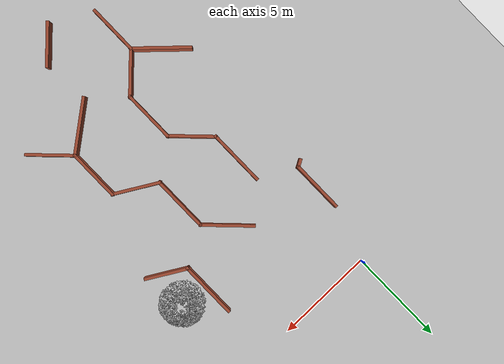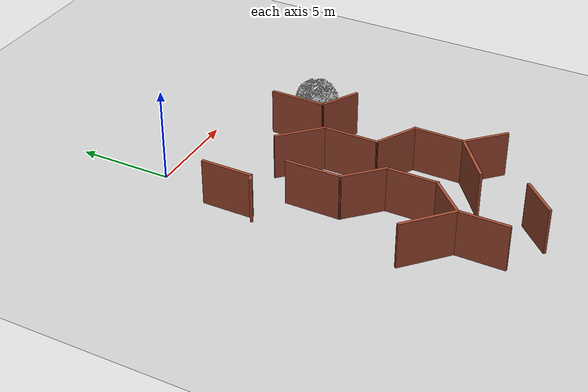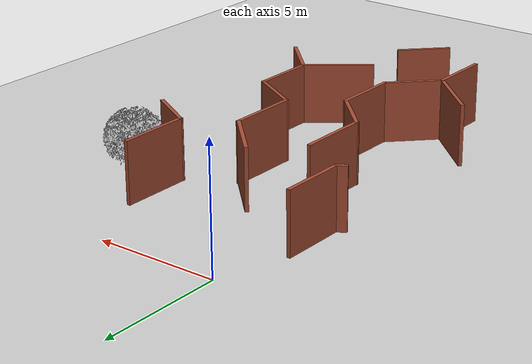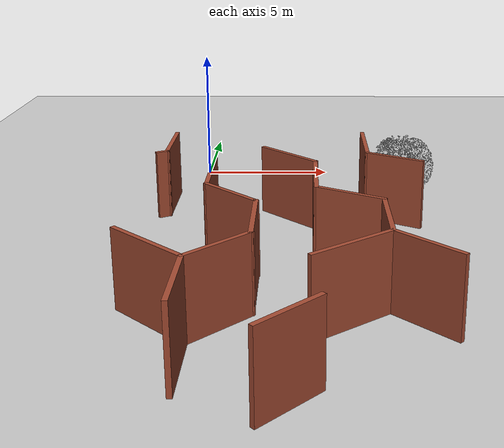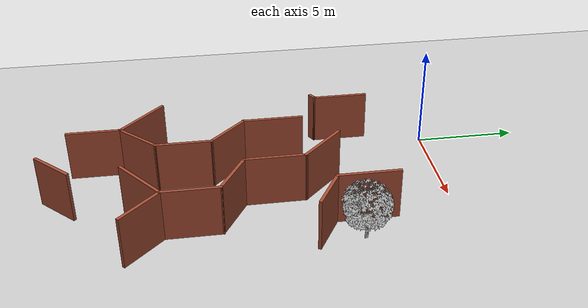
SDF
<sdf version="1.6">
 <world name="default">
  <model name="maze_rect_3">
   <pose>4e-06 -9.9e-05 0 0 -0 1.57001</pose>
   <link name="Wall_446">
    <collision name="Wall_446_Collision">
     <geometry><box><size>2.25 0.15 2.5</size></box></geometry>
     <pose>0 0 1.25 0 -0 0</pose>
    </collision>
    <visual name="Wall_446_Visual">
     <pose>0 0 1.25 0 -0 0</pose>
     <geometry><box><size>2.25 0.15 2.5</size></box></geometry>
     <material>
      <script><uri>file://media/materials/scripts/gazebo.material</uri><name>Gazebo/Bricks</name></script>
      <ambient>1 1 1 1</ambient>
     </material>
     <meta><layer>0</layer></meta>
    </visual>
    <pose>-6.18427 -7.24153 0 0 -0 1.0472</pose>
   </link>
   <link name="Wall_447">
    <collision name="Wall_447_Collision">
     <geometry><box><size>3 0.15 2.5</size></box></geometry>
     <pose>0 0 1.25 0 -0 0</pose>
    </collision>
    <visual name="Wall_447_Visual">
     <pose>0 0 1.25 0 -0 0</pose>
     <geometry><box><size>3 0.15 2.5</size></box></geometry>
     <material>
      <script><uri>file://media/materials/scripts/gazebo.material</uri><name>Gazebo/Bricks</name></script>
      <ambient>1 1 1 1</ambient>
     </material>
     <meta><layer>0</layer></meta>
    </visual>
    <pose>-4.23427 -6.33221 0 0 -0 0</pose>
   </link>
   <link name="Wall_468">
    <collision name="Wall_468_Collision">
     <geometry><box><size>2.5 0.15 2.5</size></box></geometry>
     <pose>0 0 1.25 0 -0 0</pose>
    </collision>
    <visual name="Wall_468_Visual">
     <pose>0 0 1.25 0 -0 0</pose>
     <geometry><box><size>2.5 0.15 2.5</size></box></geometry>
     <material>
      <script><uri>file://media/materials/scripts/gazebo.material</uri><name>Gazebo/Bricks</name></script>
      <ambient>1 1 1 1</ambient>
     </material>
     <meta><layer>0</layer></meta>
    </visual>
    <pose>-14.2074 -7.29221 0 0 -0 0.785398</pose>
   </link>
   <link name="Wall_469">
    <collision name="Wall_469_Collision">
     <geometry><box><size>2.75 0.15 2.5</size></box></geometry>
     <pose>0 0 1.25 0 -0 0</pose>
    </collision>
    <visual name="Wall_469_Visual">
     <pose>0 0 1.25 0 -0 0</pose>
     <geometry><box><size>2.75 0.15 2.5</size></box></geometry>
     <material>
      <script><uri>file://media/materials/scripts/gazebo.material</uri><name>Gazebo/Bricks</name></script>
      <ambient>1 1 1 1</ambient>
     </material>
     <meta><layer>0</layer></meta>
    </visual>
    <pose>-12.0765 -6.46136 0 0 -0 0</pose>
   </link>
   <link name="Wall_470">
    <collision name="Wall_470_Collision">
     <geometry><box><size>2.5 0.15 2.5</size></box></geometry>
     <pose>0 0 1.25 0 -0 0</pose>
    </collision>
    <visual name="Wall_470_Visual">
     <pose>0 0 1.25 0 -0 0</pose>
     <geometry><box><size>2.5 0.15 2.5</size></box></geometry>
     <material>
      <script><uri>file://media/materials/scripts/gazebo.material</uri><name>Gazebo/Bricks</name></script>
      <ambient>1 1 1 1</ambient>
     </material>
     <meta><layer>0</layer></meta>
    </visual>
    <pose>-10.189 -5.44379 0 0 -0 1.0472</pose>
   </link>
   <link name="Wall_471">
    <collision name="Wall_471_Collision">
     <geometry><box><size>3 0.15 2.5</size></box></geometry>
     <pose>0 0 1.25 0 -0 0</pose>
    </collision>
    <visual name="Wall_471_Visual">
     <pose>0 0 1.25 0 -0 0</pose>
     <geometry><box><size>3 0.15 2.5</size></box></geometry>
     <material>
      <script><uri>file://media/materials/scripts/gazebo.material</uri><name>Gazebo/Bricks</name></script>
      <ambient>1 1 1 1</ambient>
     </material>
     <meta><layer>0</layer></meta>
    </visual>
    <pose>-8.17652 -4.42621 0 0 -0 0</pose>
   </link>
   <link name="Wall_472">
    <collision name="Wall_472_Collision">
     <geometry><box><size>2.75 0.15 2.5</size></box></geometry>
     <pose>0 0 1.25 0 -0 0</pose>
    </collision>
    <visual name="Wall_472_Visual">
     <pose>0 0 1.25 0 -0 0</pose>
     <geometry><box><size>2.75 0.15 2.5</size></box></geometry>
     <material>
      <script><uri>file://media/materials/scripts/gazebo.material</uri><name>Gazebo/Bricks</name></script>
      <ambient>1 1 1 1</ambient>
     </material>
     <meta><layer>0</layer></meta>
    </visual>
    <pose>-5.83228 -3.50697 0 0 -0 0.785398</pose>
   </link>
   <link name="Wall_476">
    <collision name="Wall_476_Collision">
     <geometry><box><size>2.75 0.15 2.5</size></box></geometry>
     <pose>0 0 1.25 0 -0 0</pose>
    </collision>
    <visual name="Wall_476_Visual">
     <pose>0 0 1.25 0 -0 0</pose>
     <geometry><box><size>2.75 0.15 2.5</size></box></geometry>
     <material>
      <script><uri>file://media/materials/scripts/gazebo.material</uri><name>Gazebo/Bricks</name></script>
      <ambient>1 1 1 1</ambient>
     </material>
     <meta><layer>0</layer></meta>
    </visual>
    <pose>-4.17297 0.932357 0 0 -0 3.14159</pose>
   </link>
   <link name="Wall_482">
    <collision name="Wall_482_Collision">
     <geometry><box><size>2.97979 0.15 2.5</size></box></geometry>
     <pose>0 0 1.25 0 -0 0</pose>
    </collision>
    <visual name="Wall_482_Visual">
     <pose>0 0 1.25 0 -0 0</pose>
     <geometry><box><size>2.97979 0.15 2.5</size></box></geometry>
     <material>
      <script><uri>file://media/materials/scripts/gazebo.material</uri><name>Gazebo/Bricks</name></script>
      <ambient>1 1 1 1</ambient>
     </material>
     <meta><layer>0</layer></meta>
    </visual>
    <pose>-14.2385 -5.33934 0 0 -0 -0.915727</pose>
   </link>
   <link name="Wall_485">
    <collision name="Wall_485_Collision">
     <geometry><box><size>2.25 0.15 2.5</size></box></geometry>
     <pose>0 0 1.25 0 -0 0</pose>
    </collision>
    <visual name="Wall_485_Visual">
     <pose>0 0 1.25 0 -0 0</pose>
     <geometry><box><size>2.25 0.15 2.5</size></box></geometry>
     <material>
      <script><uri>file://media/materials/scripts/gazebo.material</uri><name>Gazebo/Bricks</name></script>
      <ambient>1 1 1 1</ambient>
     </material>
     <meta><layer>0</layer></meta>
    </visual>
    <pose>-18.1705 -3.68646 0 0 -0 2.35619</pose>
   </link>
   <link name="Wall_496">
    <collision name="Wall_496_Collision">
     <geometry><box><size>0.5 0.15 2.5</size></box></geometry>
     <pose>0 0 1.25 0 -0 0</pose>
    </collision>
    <visual name="Wall_496_Visual">
     <pose>0 0 1.25 0 -0 0</pose>
     <geometry><box><size>0.5 0.15 2.5</size></box></geometry>
     <material>
      <script><uri>file://media/materials/scripts/gazebo.material</uri><name>Gazebo/Bricks</name></script>
      <ambient>1 1 1 1</ambient>
     </material>
     <meta><layer>0</layer></meta>
    </visual>
    <pose>-5.56047 1.08391 0 0 -0 -1.0472</pose>
   </link>
   <link name="Wall_500">
    <collision name="Wall_500_Collision">
     <geometry><box><size>3 0.15 2.5</size></box></geometry>
     <pose>0 0 1.25 0 -0 0</pose>
    </collision>
    <visual name="Wall_500_Visual">
     <pose>0 0 1.25 0 -0 0</pose>
     <geometry><box><size>3 0.15 2.5</size></box></geometry>
     <material>
      <script><uri>file://media/materials/scripts/gazebo.material</uri><name>Gazebo/Bricks</name></script>
      <ambient>1 1 1 1</ambient>
     </material>
     <meta><layer>0</layer></meta>
    </visual>
    <pose>-7.87889 -0.91715 0 0 -0 3.14159</pose>
   </link>
   <link name="Wall_501">
    <collision name="Wall_501_Collision">
     <geometry><box><size>2.5 0.15 2.5</size></box></geometry>
     <pose>0 0 1.25 0 -0 0</pose>
    </collision>
    <visual name="Wall_501_Visual">
     <pose>0 0 1.25 0 -0 0</pose>
     <geometry><box><size>2.5 0.15 2.5</size></box></geometry>
     <material>
      <script><uri>file://media/materials/scripts/gazebo.material</uri><name>Gazebo/Bricks</name></script>
      <ambient>1 1 1 1</ambient>
     </material>
     <meta><layer>0</layer></meta>
    </visual>
    <pose>-10.1347 -1.748 0 0 -0 -2.35619</pose>
   </link>
   <link name="Wall_502">
    <collision name="Wall_502_Collision">
     <geometry><box><size>2.75 0.15 2.5</size></box></geometry>
     <pose>0 0 1.25 0 -0 0</pose>
    </collision>
    <visual name="Wall_502_Visual">
     <pose>0 0 1.25 0 -0 0</pose>
     <geometry><box><size>2.75 0.15 2.5</size></box></geometry>
     <material>
      <script><uri>file://media/materials/scripts/gazebo.material</uri><name>Gazebo/Bricks</name></script>
      <ambient>1 1 1 1</ambient>
     </material>
     <meta><layer>0</layer></meta>
    </visual>
    <pose>-12.2656 -2.57885 0 0 -0 3.14159</pose>
   </link>
   <link name="Wall_503">
    <collision name="Wall_503_Collision">
     <geometry><box><size>2.5 0.15 2.5</size></box></geometry>
     <pose>0 0 1.25 0 -0 0</pose>
    </collision>
    <visual name="Wall_503_Visual">
     <pose>0 0 1.25 0 -0 0</pose>
     <geometry><box><size>2.5 0.15 2.5</size></box></geometry>
     <material>
      <script><uri>file://media/materials/scripts/gazebo.material</uri><name>Gazebo/Bricks</name></script>
      <ambient>1 1 1 1</ambient>
     </material>
     <meta><layer>0</layer></meta>
    </visual>
    <pose>-14.3964 -1.748 0 0 -0 2.35619</pose>
   </link>
   <link name="Wall_504">
    <collision name="Wall_504_Collision">
     <geometry><box><size>2.66072 0.15 2.5</size></box></geometry>
     <pose>0 0 1.25 0 -0 0</pose>
    </collision>
    <visual name="Wall_504_Visual">
     <pose>0 0 1.25 0 -0 0</pose>
     <geometry><box><size>2.66072 0.15 2.5</size></box></geometry>
     <material>
      <script><uri>file://media/materials/scripts/gazebo.material</uri><name>Gazebo/Bricks</name></script>
      <ambient>1 1 1 1</ambient>
     </material>
     <meta><layer>0</layer></meta>
    </visual>
    <pose>-16.4826 -0.912996 0 0 -0 3.13828</pose>
   </link>
   <link name="Wall_506">
    <collision name="Wall_506_Collision">
     <geometry><box><size>3.04862 0.15 2.5</size></box></geometry>
     <pose>0 0 1.25 0 -0 0</pose>
    </collision>
    <visual name="Wall_506_Visual">
     <pose>0 0 1.25 0 -0 0</pose>
     <geometry><box><size>3.04862 0.15 2.5</size></box></geometry>
     <material>
      <script><uri>file://media/materials/scripts/gazebo.material</uri><name>Gazebo/Bricks</name></script>
      <ambient>1 1 1 1</ambient>
     </material>
     <meta><layer>0</layer></meta>
    </visual>
    <pose>-14.2391 0.142993 0 0 -0 -2.3211</pose>
   </link>
   <static>1</static>
  </model>
  <model name="tree2_21">
   <link name="link_0">
    <inertial>
     <mass>1</mass>
     <inertia>
      <ixx>0.166667</ixx>
      <ixy>0</ixy>
      <ixz>0</ixz>
      <iyy>0.166667</iyy>
      <iyz>0</iyz>
      <izz>0.166667</izz>
     </inertia>
    </inertial>
    <pose>-0 -0 0 1.58863 -0.000294 0</pose>
    <visual name="visual">
     <geometry><mesh><uri>model://tree2/Tree.obj</uri><scale>1 1 1</scale></mesh></geometry>
    </visual>
    <collision name="collision">
     <geometry><mesh><uri>model://tree2/Tree.obj</uri><scale>1 1 1</scale></mesh></geometry>
     <surface>
      <friction>
       <ode><mu>1</mu><mu2>1</mu2><fdir1>0 0 0</fdir1><slip1>0</slip1><slip2>0</slip2></ode>
       <torsional>
        <coefficient>1</coefficient>
        <patch_radius>0</patch_radius>
        <surface_radius>0</surface_radius>
        <use_patch_radius>1</use_patch_radius>
        <ode><slip>0</slip></ode>
       </torsional>
      </friction>
      <bounce><restitution_coefficient>0</restitution_coefficient><threshold>1e+06</threshold></bounce>
      <contact>
       <collide_without_contact>0</collide_without_contact>
       <collide_without_contact_bitmask>1</collide_without_contact_bitmask>
       <collide_bitmask>1</collide_bitmask>
       <ode>
        <soft_cfm>0</soft_cfm>
        <soft_erp>0.2</soft_erp>
        <kp>1e+13</kp>
        <kd>1</kd>
        <max_vel>0.01</max_vel>
        <min_depth>0</min_depth>
       </ode>
       <bullet>
        <split_impulse>1</split_impulse>
        <split_impulse_penetration_threshold>-0.01</split_impulse_penetration_threshold>
        <soft_cfm>0</soft_cfm>
        <soft_erp>0.2</soft_erp>
        <kp>1e+13</kp>
        <kd>1</kd>
       </bullet>
      </contact>
     </surface>
    </collision>
   </link>
   <static>1</static>
   <pose>7.71258 -4.5894 0 0 -0 0</pose>
  </model>
  <model name="ground_plane">
   <static>1</static>
   <link name="link">
    <collision name="collision">
     <geometry><plane><normal>0 0 1</normal><size>100 100</size></plane></geometry>
     <surface>
      <contact><collide_bitmask>65535</collide_bitmask></contact>
      <friction><ode><mu>100</mu><mu2>50</mu2></ode></friction>
     </surface>
    </collision>
    <visual name="visual">
     <cast_shadows>0</cast_shadows>
     <geometry><plane><normal>0 0 1</normal><size>100 100</size></plane></geometry>
     <material>
      <script><uri>file://media/materials/scripts/gazebo.material</uri><name>Gazebo/Grey</name></script>
     </material>
    </visual>
   </link>
   <pose>9.31394 52.073 0 0 -0 0</pose>
  </model>
 </world>
</sdf>
